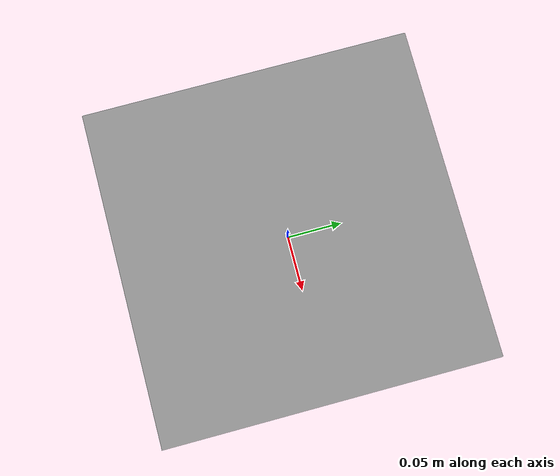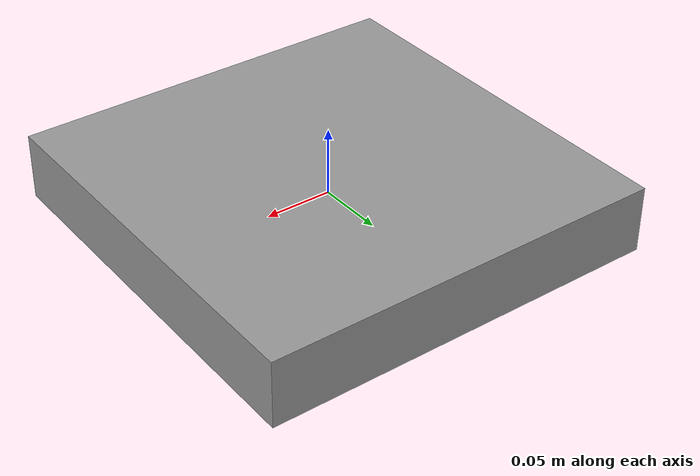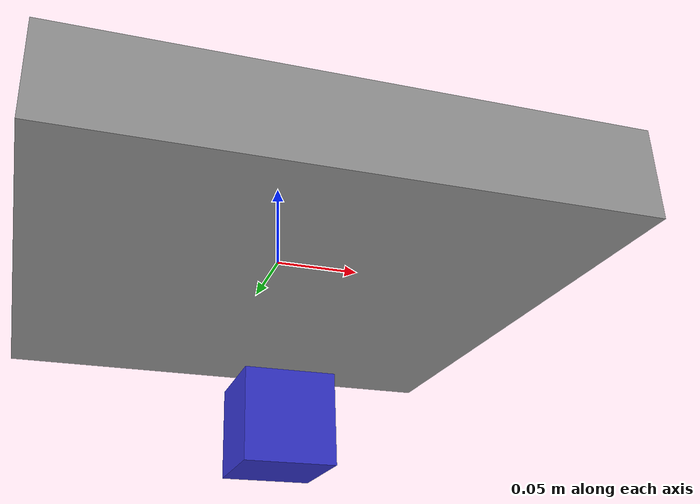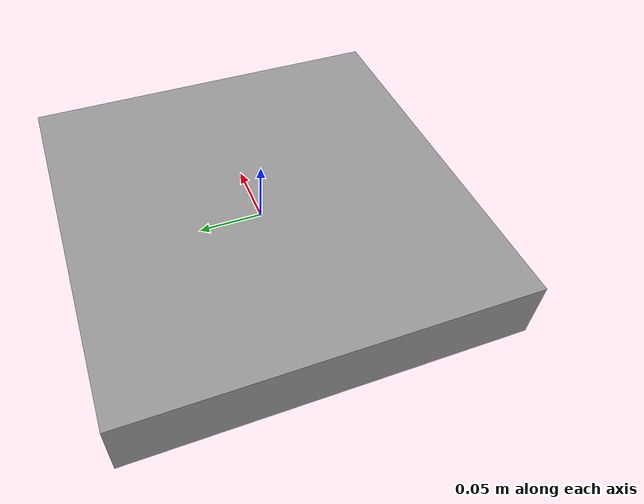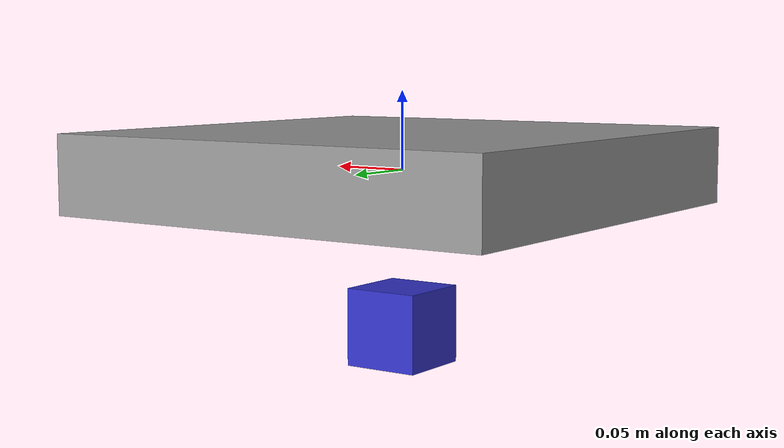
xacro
<?xml version="1.0"?>
<robot name="simple_drone" xmlns:xacro="http://www.ros.org/wiki/xacro">

  <!-- macros / properties -->
  <xacro:property name="mass" value="1.0"/>
  <link name="base_link">
    <inertial>
      <mass value="${mass}"/>
      <origin xyz="0 0 0" rpy="0 0 0"/>
      <inertia ixx="0.01" ixy="0.0" ixz="0.0" iyy="0.01" iyz="0.0" izz="0.02"/>
    </inertial>
    <visual>
      <geometry>
        <box size="0.3 0.3 0.05"/>
      </geometry>
      <material name="grey"><color rgba="0.6 0.6 0.6 1"/></material>
    </visual>
    <collision>
      <geometry><box size="0.3 0.3 0.05"/></geometry>
    </collision>
  </link>

  <!-- IMU link -->
  <link name="imu_link"/>
  <joint name="base_to_imu" type="fixed">
    <parent link="base_link"/>
    <child  link="imu_link"/>
    <origin xyz="0 0 0" rpy="0 0 0"/>
  </joint>

  <!-- LIDAR link -->
  <link name="lidar_link"/>
  <joint name="base_to_lidar" type="fixed">
    <parent link="base_link"/>
    <child  link="lidar_link"/>
    <origin xyz="0 0 0.15" rpy="0 0 0"/>
  </joint>

  <!-- GPS link -->
  <link name="gps_link"/>
  <joint name="base_to_gps" type="fixed">
    <parent link="base_link"/>
    <child  link="gps_link"/>
    <origin xyz="-0.05 0 0.03" rpy="0 0 0"/>
  </joint>
  <!-- Camera link -->
  <link name="camera_link">
    <visual>
      <geometry>
        <box size="0.05 0.05 0.05"/>
      </geometry>
      <material name="blue"><color rgba="0.2 0.2 0.8 1"/></material>
    </visual>
    <collision>
      <geometry>
        <box size="0.05 0.05 0.05"/>
      </geometry>
    </collision>
  </link>
  <!-- Joint camera gắn vào base_link, hướng xuống dưới -->
  <joint name="base_to_camera" type="fixed">
    <parent link="base_link"/>
    <child link="camera_link"/>
    <!-- Đặt camera ở phía dưới drone (z âm), quay -90 độ quanh trục x để hướng xuống -->
    <origin xyz="0 0 -0.1" rpy="-1.5708 0 0"/>
  </joint>
  <gazebo reference="imu_link">
    <sensor type="imu" name="imu_sensor">
      <always_on>true</always_on>
      <plugin name="imu_plugin" filename="libgazebo_ros_imu_sensor.so">
        <ros>
          <namespace>/</namespace>
        </ros>
        <updateRateHZ>50.0</updateRateHZ>  <!-- thêm dòng này -->
	<topicName>/imu</topicName>
        <bodyName>base_link</bodyName>
        <frameName>imu_link</frameName>
        <gaussianNoise>0.01</gaussianNoise>
        <accelNoiseDensity>0.001</accelNoiseDensity>
        <rateNoiseDensity>0.0001</rateNoiseDensity>
        <biasCorrelationTime>1000</biasCorrelationTime>
        <xyzOffset>0 0 0.02</xyzOffset>   <!-- cùng vị trí như joint base_to_imu -->
        <rpyOffset>0 0 0</rpyOffset>
      </plugin>
    </sensor>
  </gazebo>

  <gazebo reference="lidar_link">
    <sensor type="ray" name="hokuyo_sim">
      <always_on>true</always_on>
      <update_rate>10.0</update_rate>
      <ray>
        <scan>
          <horizontal>
            <samples>360</samples>
            <resolution>1</resolution>
	    <min_angle>-3.14159</min_angle>
            <max_angle>3.14159</max_angle>
          </horizontal>
        </scan>
        <range>
          <min>0.1</min>
          <max>30.0</max>
          <resolution>0.01</resolution>
        </range>
        <noise type="gaussian">
          <mean>0.0</mean>
          <stddev>0.01</stddev>
        </noise>
      </ray>
      <plugin name="lidar_plugin" filename="libgazebo_ros_laser.so">
        <topicName>/scan</topicName>
        <frameName>lidar_link</frameName>
      </plugin>
    </sensor>
  </gazebo>
  <gazebo>
    <plugin name="gps_plugin" filename="libhector_gazebo_ros_gps.so">
      <alwaysOn>1</alwaysOn>
      <updateRate>10.0</updateRate>
      <bodyName>base_link</bodyName>
      <topicName>fix</topicName>
      <velocityTopicName>fix_velocity</velocityTopicName>
      <drift>5.0 5.0 5.0</drift>
      <gaussianNoise>0.1 0.1 0.1</gaussianNoise>
      <velocityDrift>0 0 0</velocityDrift>
      <velocityGaussianNoise>0.1 0.1 0.1</velocityGaussianNoise>
    </plugin>
  </gazebo>
  <!-- Gazebo camera plugin -->
  <gazebo reference="camera_link">
    <sensor type="camera" name="downward_camera">
      <always_on>true</always_on>
      <update_rate>30.0</update_rate>
      <camera name="head_camera">
        <horizontal_fov>1.047</horizontal_fov>  <!-- ~60 deg -->
        <image>
          <width>640</width>
          <height>480</height>
          <format>R8G8B8</format>
        </image>
        <clip>
          <near>0.02</near>
          <far>50.0</far>
        </clip>
      </camera>
      <plugin name="camera_controller" filename="libgazebo_ros_camera.so">
        <alwaysOn>true</alwaysOn>
        <updateRate>30.0</updateRate>
        <cameraName>downward_camera</cameraName>
        <imageTopicName>image_raw</imageTopicName>
        <cameraInfoTopicName>camera_info</cameraInfoTopicName>
        <frameName>camera_link</frameName>
      </plugin>
    </sensor>
  </gazebo>
  <gazebo>
    <plugin name="planar_move" filename="libgazebo_ros_planar_move.so">
      <bodyName>base_link_1</bodyName>
      <commandTopic>/cmd_vel</commandTopic>
      <odometryTopic>/gazeboOdom</odometryTopic>
      <odometryFrame>/gazeboOdom</odometryFrame>
      <maxLinearVel>2.0</maxLinearVel>
      <maxAngularVel>1.0</maxAngularVel>
      <robotBaseFrame>base_link_1</robotBaseFrame>
      <odometryRate>10.0</odometryRate>
      <cmdTimeout>-1.0</cmdTimeout>
    </plugin>
  </gazebo>
</robot>
